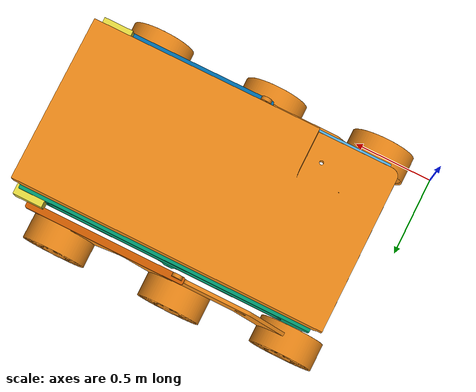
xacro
<?xml version="1.0"?>
<robot xmlns:xacro="http://www.ros.org/wiki/xacro" name="rover">
    <xacro:property name="PI" value="3.14159"/>
    <xacro:property name="effort" value="30"/>
    <xacro:property name="velocity" value="1000"/>

    <xacro:macro name="inertia_wheel">
        <inertial>
            <origin xyz="0 0 0" rpy="0 0 0"/>
            <mass value="3"/>
            <inertia ixx="1" ixy="0" ixz="0" iyy="1" iyz="0" izz="1"/>
        </inertial>

    </xacro:macro>
    <xacro:macro name="base_plate">
        <inertial>
            <origin xyz="0 0 0" rpy="0 0 0"/>
            <mass value="20"/>
            <inertia ixx="1" ixy="0" ixz="0" iyy="1" iyz="0" izz="1"/>
        </inertial>

    </xacro:macro>
    <xacro:macro name="rocker">
        <inertial>
            <origin xyz="0 0 0" rpy="0 0 0"/>
            <mass value="10"/>
            <inertia ixx="1" ixy="0" ixz="0" iyy="1" iyz="0" izz="1"/>
        </inertial>

    </xacro:macro>
    <xacro:macro name="bogie">
        <inertial>
            <origin xyz="0 0 0" rpy="0 0 0"/>
            <mass value="9"/>
            <inertia ixx="1" ixy="0" ixz="0" iyy="1" iyz="0" izz="1"/>
        </inertial>

    </xacro:macro>

    <link name="base_link">

        <visual>
            <origin xyz="0.2 0.2 0.8" rpy="0 0 0"/>
            <geometry>
                <mesh filename="package://rover_description/meshes/Plate.STL" scale="0.01 0.01 0.01"/>

            </geometry>
        </visual>
        <collision>
            <origin xyz="0.2 0.2 0.8" rpy="0 0 0"/>
            <geometry>
                <mesh filename="package://rover_description/meshes/Plate.STL" scale="0.01 0.01 0.01"/>

            </geometry>

        </collision>
        <xacro:base_plate/>

    </link>

    <link name="slot_right">

        <visual>
            <origin xyz="-1.84 0.01 -0.3" rpy="${PI/2} 0 0"/>
            <geometry>
                <mesh filename="package://rover_description/meshes2/platform.STL" scale="0.0045 0.0045 0.0045"/>

            </geometry>
        </visual>
        <collision>
            <origin xyz="-1.84 0.01 -0.3" rpy="${PI/2} 0 0"/>
            <geometry>
                <mesh filename="package://rover_description/meshes2/platform.STL" scale="0.0045 0.0045 0.0045"/>

            </geometry>

        </collision>
        <xacro:base_plate/>

    </link>
    <link name="slot_left">

        <visual>
            <origin xyz="-1.84 -0.01 -0.3" rpy="${PI/2} 0 0"/>
            <geometry>
                <mesh filename="package://rover_description/meshes2/platform.STL" scale="0.0045 0.0045 0.0045"/>

            </geometry>
        </visual>
        <collision>
            <origin xyz="-1.84 -0.01 -0.3" rpy="${PI/2} 0 0"/>
            <geometry>
                <mesh filename="package://rover_description/meshes2/platform.STL" scale="0.0045 0.0045 0.0045"/>

            </geometry>

        </collision>
        <xacro:base_plate/>

    </link>
    <link name="diff_bar">

        <visual>
            <origin xyz="0.13 0.43 -0.9" rpy="${PI/2} -${PI/2} 0"/>
            <geometry>
                <mesh filename="package://rover_description/meshes2/differential.STL" scale="0.0045 0.0045 0.0045"/>

            </geometry>
        </visual>
        <collision>
            <origin xyz="0.13 0.43 -0.9" rpy="${PI/2} -${PI/2} 0"/>
            <geometry>
                <mesh filename="package://rover_description/meshes2/differential.STL" scale="0.0045 0.0045 0.0045"/>

            </geometry>

        </collision>
        <xacro:base_plate/>

    </link>
    <link name="tierod_right">

        <visual>
            <origin xyz="0 -0.05 0" rpy="0 -${PI} 0"/>
            <geometry>
                <mesh filename="package://rover_description/meshes2/tierod.STL" scale="0.0045 0.0045 0.0045"/>

            </geometry>
        </visual>
        <collision>
            <origin xyz="0 -0.05 0" rpy="0 -${PI} 0"/>
            <geometry>
                <mesh filename="package://rover_description/meshes2/tierod.STL" scale="0.0045 0.0045 0.0045"/>

            </geometry>

        </collision>
        <xacro:base_plate/>

    </link>
    <link name="tierod_left">

        <visual>
            <origin xyz="0 0 0" rpy="0 -${PI} 0"/>
            <geometry>
                <mesh filename="package://rover_description/meshes2/tierod.STL" scale="0.0045 0.0045 0.0045"/>

            </geometry>
        </visual>
        <collision>
            <origin xyz="0 0 0" rpy="0 -${PI} 0"/>
            <geometry>
                <mesh filename="package://rover_description/meshes2/tierod.STL" scale="0.0045 0.0045 0.0045"/>

            </geometry>

        </collision>
        <xacro:base_plate/>

    </link>
    <link name="rocker_right">

        <visual>
            <origin xyz="2.0 0 -0.66" rpy="${PI/2} 0 ${PI}"/>
            <geometry>
                <mesh filename="package://rover_description/meshes2/rocker.STL" scale="0.0045 0.0045 0.0045"/>

            </geometry>
        </visual>
        <collision>
            <origin xyz="2.0 0 -0.66" rpy="${PI/2} 0 ${PI}"/>
            <geometry>
                <mesh filename="package://rover_description/meshes2/rocker.STL" scale="0.0045 0.0045 0.0045"/>

            </geometry>

        </collision>
        <xacro:base_plate/>

    </link>
    <link name="rocker_left">

        <visual>
            <origin xyz="2.0 0.05 -0.66" rpy="${PI/2} 0 ${PI}"/>
            <geometry>
                <mesh filename="package://rover_description/meshes2/rocker.STL" scale="0.0045 0.0045 0.0045"/>

            </geometry>
        </visual>
        <collision>
            <origin xyz="2.0 0.05 -0.66" rpy="${PI/2} 0 ${PI}"/>
            <geometry>
                <mesh filename="package://rover_description/meshes2/rocker.STL" scale="0.0045 0.0045 0.0045"/>

            </geometry>

        </collision>
        <xacro:base_plate/>

    </link>
    <link name="bogie_right">

        <visual>
            <origin xyz="0.45 0 -0.48" rpy="${PI/2} 0 ${PI}"/>
            <geometry>
                <mesh filename="package://rover_description/meshes2/bogie.STL" scale="0.0045 0.0045 0.0045"/>

            </geometry>
        </visual>
        <collision>
            <origin xyz="0.45 0 -0.48" rpy="${PI/2} 0 ${PI}"/>
            <geometry>
                <mesh filename="package://rover_description/meshes2/bogie.STL" scale="0.0045 0.0045 0.0045"/>

            </geometry>

        </collision>
        <xacro:base_plate/>

    </link>
    <link name="bogie_left">

        <visual>
            <origin xyz="0.45 0 -0.48" rpy="${PI/2} 0 ${PI}"/>
            <geometry>
                <mesh filename="package://rover_description/meshes2/bogie.STL" scale="0.0045 0.0045 0.0045"/>

            </geometry>
        </visual>
        <collision>
            <origin xyz="0.45 0 -0.48" rpy="${PI/2} 0 ${PI}"/>
            <geometry>
                <mesh filename="package://rover_description/meshes2/bogie.STL" scale="0.0045 0.0045 0.0045"/>

            </geometry>

        </collision>
        <xacro:base_plate/>

    </link>
    <link name="wheel1">

        <visual>
            <origin xyz="-0.2 0 -0.2" rpy="${PI/2} 0 0"/>
            <geometry>
                <mesh filename="package://rover_description/meshes/Wheel.STL" scale="0.01 0.01 0.01"/>

            </geometry>
        </visual>
        <collision>
            <origin xyz="-0.2 0 -0.2" rpy="${PI/2} 0 0"/>
            <geometry>
                <mesh filename="package://rover_description/meshes/Wheel.STL" scale="0.01 0.01 0.01"/>

            </geometry>

        </collision>
        <xacro:inertia_wheel/>

    </link>
    <link name="wheel2">

        <visual>
            <origin xyz="-0.2 0 -0.2" rpy="${PI/2} 0 0"/>
            <geometry>
                <mesh filename="package://rover_description/meshes/Wheel.STL" scale="0.01 0.01 0.01"/>

            </geometry>
        </visual>
        <collision>
            <origin xyz="-0.2 0 -0.2" rpy="${PI/2} 0 0"/>
            <geometry>
                <mesh filename="package://rover_description/meshes/Wheel.STL" scale="0.01 0.01 0.01"/>

            </geometry>

        </collision>
        <xacro:inertia_wheel/>

    </link>
    <link name="wheel3">

        <visual>
            <origin xyz="-0.2 0 -0.2" rpy="${PI/2} 0 0"/>
            <geometry>
                <mesh filename="package://rover_description/meshes/Wheel.STL" scale="0.01 0.01 0.01"/>

            </geometry>
        </visual>
        <collision>
            <origin xyz="-0.2 0 -0.2" rpy="${PI/2} 0 0"/>
            <geometry>
                <mesh filename="package://rover_description/meshes/Wheel.STL" scale="0.01 0.01 0.01"/>

            </geometry>

        </collision>
        <xacro:inertia_wheel/>

    </link>
    <link name="wheel4">

        <visual>
            <origin xyz="-0.2 0 0.22" rpy="-${PI/2} 0 0"/>
            <geometry>
                <mesh filename="package://rover_description/meshes/Wheel.STL" scale="0.01 0.01 0.01"/>

            </geometry>
        </visual>
        <collision>
            <origin xyz="-0.2 0 0.22" rpy="-${PI/2} 0 0"/>
            <geometry>
                <mesh filename="package://rover_description/meshes/Wheel.STL" scale="0.01 0.01 0.01"/>

            </geometry>

        </collision>
        <xacro:inertia_wheel/>

    </link>
    <link name="wheel5">

        <visual>
            <origin xyz="-0.2 0 0.22" rpy="-${PI/2} 0 0"/>
            <geometry>
                <mesh filename="package://rover_description/meshes/Wheel.STL" scale="0.01 0.01 0.01"/>

            </geometry>
        </visual>
        <collision>
            <origin xyz="-0.2 0 0.22" rpy="-${PI/2} 0 0"/>
            <geometry>
                <mesh filename="package://rover_description/meshes/Wheel.STL" scale="0.01 0.01 0.01"/>

            </geometry>

        </collision>
        <xacro:inertia_wheel/>

    </link>
    <link name="wheel6">

        <visual>
            <origin xyz="-0.2 0 0.22" rpy="-${PI/2} 0 0"/>
            <geometry>
                <mesh filename="package://rover_description/meshes/Wheel.STL" scale="0.01 0.01 0.01"/>

            </geometry>
        </visual>
        <collision>
            <origin xyz="-0.2 0 0.22" rpy="-${PI/2} 0 0"/>
            <geometry>
                <mesh filename="package://rover_description/meshes/Wheel.STL" scale="0.01 0.01 0.01"/>

            </geometry>

        </collision>
        <xacro:inertia_wheel/>

    </link>

    <joint name="plate_to_slot_right" type="fixed">
        <parent link="base_link"/>
        <child link="slot_right"/>
        <origin rpy="0 0 0" xyz="1.15 0.2 0.8"/>

    </joint>
    <joint name="plate_to_slot_left" type="fixed">
        <parent link="base_link"/>
        <child link="slot_left"/>
        <origin rpy="0 0 0" xyz="1.15 1.23 0.8"/>

    </joint>
    <joint name="plate_differential" type="fixed">
        <parent link="base_link"/>
        <child link="diff_bar"/>
        <origin rpy="0 0 0" xyz="1.95 0.83 0.8"/>

    </joint>
    <joint name="rod_right" type="fixed">
        <parent link="diff_bar"/>
        <child link="tierod_right"/>
        <origin rpy="0 0 0" xyz="0.05 -0.7 -0.1"/>

    </joint>
    <joint name="rod_left" type="fixed">
        <parent link="diff_bar"/>
        <child link="tierod_left"/>
        <origin rpy="0 0 0" xyz="0.05 0.37 -0.1"/>

    </joint>
    <joint name="rocker_right_link" type="fixed">
        <parent link="tierod_right"/>
        <child link="rocker_right"/>
        <origin rpy="0 0 0" xyz="-0.89 0 0"/>

    </joint>
    <joint name="rocker_left_link" type="fixed">
        <parent link="tierod_left"/>
        <child link="rocker_left"/>
        <origin rpy="0 0 0" xyz="-0.89 0 0"/>

    </joint>
    <joint name="rocker_right_to_bogie" type="revolute">
        <parent link="rocker_right"/>
        <child link="bogie_right"/>
        <origin rpy="0 0 0" xyz="0.36 0 -0.2"/>
        <axis xyz="0 1 0"/>
        <limit lower="-${PI/2}" upper="${PI/2}" effort="${effort}" velocity="${velocity}"/>

    </joint>
    <joint name="rocker_left_to_bogie" type="revolute">
        <parent link="rocker_left"/>
        <child link="bogie_left"/>
        <origin rpy="0 0 0" xyz="0.36 0.05 -0.2"/>
        <axis xyz="0 1 0"/>
        <limit lower="-${PI/2}" upper="${PI/2}" effort="${effort}" velocity="${velocity}"/>

    </joint>
    <joint name="wheel1_joint" type="continuous">
        <parent link="rocker_right"/>
        <child link="wheel1"/>
        <origin rpy="0 0 0" xyz="-0.76 0 -0.55"/>
        <axis xyz="0 1 0"/>

    </joint>
    <joint name="wheel2_joint" type="continuous">
        <parent link="bogie_right"/>
        <child link="wheel2"/>
        <origin rpy="0 0 0" xyz="-0.41 0 -0.37"/>
        <axis xyz="0 1 0"/>

    </joint>
    <joint name="wheel3_joint" type="continuous">
        <parent link="bogie_right"/>
        <child link="wheel3"/>
        <origin rpy="0 0 0" xyz="0.35 0 -0.37"/>
        <axis xyz="0 1 0"/>

    </joint>
        <joint name="wheel4_joint" type="continuous">
        <parent link="rocker_left"/>
        <child link="wheel4"/>
        <origin rpy="0 0 0" xyz="-0.76 0 -0.55"/>
        <axis xyz="0 1 0"/>

    </joint>
    <joint name="wheel5_joint" type="continuous">
        <parent link="bogie_left"/>
        <child link="wheel5"/>
        <origin rpy="0 0 0" xyz="-0.41 0 -0.37"/>
        <axis xyz="0 1 0"/>

    </joint>
    <joint name="wheel6_joint" type="continuous">
        <parent link="bogie_left"/>
        <child link="wheel6"/>
        <origin rpy="0 0 0" xyz="0.35 0 -0.37"/>
        <axis xyz="0 1 0"/>

    </joint>

  <!-- Load the Gazebo ROS control plugin -->
    <gazebo>
    <plugin name="rover_diff_drive_controller" filename="libgazebo_ros_diff_drive.so">

        <rightJoint>wheel2_joint</rightJoint>
        <leftJoint>wheel5_joint</leftJoint>
  <!-- Right middle wheel joint -->
      <wheelSeparation>1</wheelSeparation> <!-- Distance between wheels -->
      <wheelRadius>0.2</wheelRadius> <!-- Radius of wheels -->
      <publishWheelJointState>true</publishWheelJointState>
      <legacyMode>false</legacyMode>
       <!-- Update rate for the controller -->
       <commandTopic>cmd_vel</commandTopic>

      <robotBaseFrame>base_link</robotBaseFrame> <!-- Base frame of the rover -->
    </plugin>
    </gazebo>

    <gazebo reference="base_link">
        <material>Gazebo/Orange</material>
    </gazebo>
    <gazebo reference="rocker_right">
        <material>Gazebo/Orange</material>
    </gazebo>
    <gazebo reference="rocker_left">
        <material>Gazebo/Orange</material>
    </gazebo>
    <gazebo reference="bogie_right">
        <material>Gazebo/Orange</material>
    </gazebo>
    <gazebo reference="bogie_left">
        <material>Gazebo/Orange</material>
    </gazebo>
    <gazebo reference="wheel1">
        <material>Gazebo/Orange</material>
    </gazebo>
    <gazebo reference="wheel2">
        <material>Gazebo/Orange</material>
    </gazebo>
    <gazebo reference="wheel3">
        <material>Gazebo/Orange</material>
    </gazebo>
    <gazebo reference="wheel4">
        <material>Gazebo/Orange</material>
    </gazebo>
    <gazebo reference="wheel5">
        <material>Gazebo/Orange</material>
    </gazebo>
    <gazebo reference="wheel6">
        <material>Gazebo/Orange</material>
    </gazebo>

    </robot>
